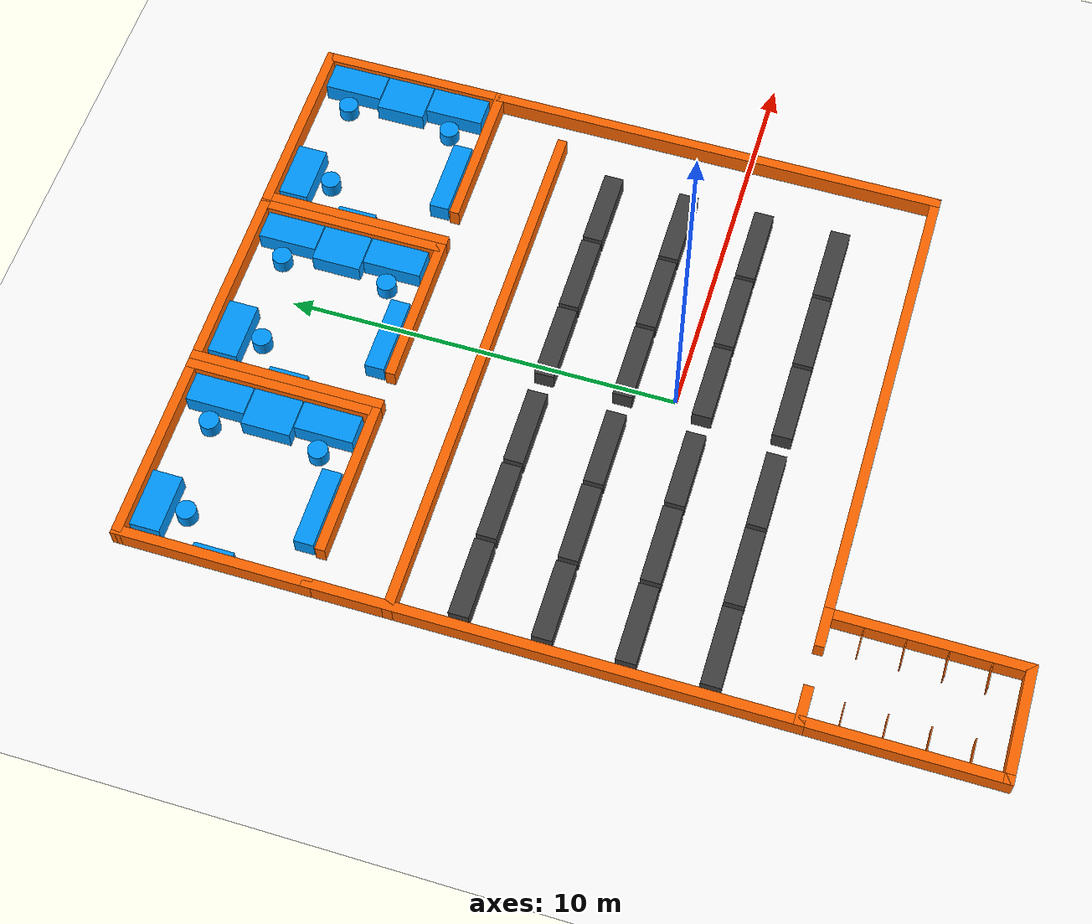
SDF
<!--
@file warehouse_world.sdf
@author Daniel Onderka (xonder05)
@date 03/2026
-->

<sdf version="1.9">
  <world name="warehouse">

    <plugin name="gz::sim::systems::Physics" filename="ignition-gazebo-physics-system"/>
    <plugin name="gz::sim::systems::SceneBroadcaster" filename="ignition-gazebo-scene-broadcaster-system"/>
    <plugin name="gz::sim::systems::UserCommands" filename="ignition-gazebo-user-commands-system"/>
    <plugin name="gz::sim::systems::Sensors" filename="ignition-gazebo-sensors-system">
      <render_engine>ogre2</render_engine>
    </plugin>

    <physics name="1ms" type="ignored">
      <max_step_size>0.004</max_step_size>
      <real_time_factor>1</real_time_factor>
      <real_time_update_rate>250</real_time_update_rate>
    </physics>
    <gravity>0 0 -9.8</gravity>
    <magnetic_field>6e-06 2.3e-05 -4.2e-05</magnetic_field>
    <atmosphere type="adiabatic"/>
    <scene>
      <ambient>0.4 0.4 0.4 1</ambient>
      <background>0.7 0.7 0.7 1</background>
      <shadows>true</shadows>
    </scene>

    <!-- Sun and Ground -->

    <light type="directional" name="sun">
      <cast_shadows>true</cast_shadows>
      <pose>0 0 10 0 0 0</pose>
      <diffuse>0.8 0.8 0.8 1</diffuse>
      <specular>0.2 0.2 0.2 1</specular>
      <attenuation>
        <range>1000</range>
        <constant>0.9</constant>
        <linear>0.01</linear>
        <quadratic>0.001</quadratic>
      </attenuation>
      <direction>-0.5 0.1 -0.9</direction>
    </light>

    <model name="ground_plane">
      <static>true</static>
      <link name="ground_plane">
        <visual name="visual">
          <geometry>
            <plane>
              <normal>0 0 1</normal>
              <size>25 25</size>
            </plane>
          </geometry>
          <material>
            <diffuse>1.0 1.0 1.0 1.0</diffuse>
          </material>
        </visual>
        <collision name="collision">
          <geometry>
            <plane>
              <normal>0 0 1</normal>
              <size>25 25</size>
            </plane>
          </geometry>
          <surface>
            <friction>
              <ode/>
            </friction>
            <bounce/>
            <contact/>
          </surface>
        </collision>
      </link>
    </model>

    <!-- Robot parking room -->

    <include>
      <name>parking</name>
      <uri>model://worlds/warehouse/robot_parking.sdf</uri>
      <pose>-6 -7.25 0.25 0 0 3.1415</pose>
    </include>

    <!-- Offices -->

    <include>
      <name>office_1</name>
      <uri>model://worlds/warehouse/office.sdf</uri>
      <pose>5 9.25 0.25 0 0 1.5707</pose>
    </include>

    <include>
      <name>office_2</name>
      <uri>model://worlds/warehouse/office.sdf</uri>
      <pose>0 9.25 0.25 0 0 1.5707</pose>
    </include>

    <include>
      <name>office_3</name>
      <uri>model://worlds/warehouse/office.sdf</uri>
      <pose>-5 9.25 0.25 0 0 1.5707</pose>
    </include>

    <!-- Shelves -->

    <include>
      <name>shelves</name>
      <uri>model://worlds/warehouse/storage.sdf</uri>
      <pose>-0.7 0.25 0.25 0 0 0</pose>
    </include>

    <!-- Remaining Walls -->

    <model name="wall1">
      <static>true</static>
      <pose>-7.375 1 0.25 0 0 1.5707</pose>
      <link name="link">
        <visual name="visual">
          <geometry><box><size>12 0.25 0.5</size></box></geometry>
          <material><diffuse>1.0 0.4 0 1</diffuse></material>
        </visual>
        <collision name="collision">
          <geometry><box><size>12 0.25 0.5</size></box></geometry>
        </collision>
      </link>
    </model>

    <model name="wall2">
      <static>true</static>
      <pose>1.5 -4.875 0.25 0 0 0</pose>
      <link name="link">
        <visual name="visual">
          <geometry><box><size>12 0.25 0.5</size></box></geometry>
          <material><diffuse>1.0 0.4 0 1</diffuse></material>
        </visual>
        <collision name="collision">
          <geometry><box><size>12 0.25 0.5</size></box></geometry>
        </collision>
      </link>
    </model>

    <model name="wall3">
      <static>true</static>
      <pose>7.375 1 0.25 0 0 1.5707</pose>
      <link name="link">
        <visual name="visual">
          <geometry><box><size>12 0.25 0.5</size></box></geometry>
          <material><diffuse>1.0 0.4 0 1</diffuse></material>
        </visual>
        <collision name="collision">
          <geometry><box><size>12 0.25 0.5</size></box></geometry>
        </collision>
      </link>
    </model>

    <model name="wall4">
      <static>true</static>
      <pose>-0.5 4.875 0.25 0 0 0</pose>
      <link name="link">
        <visual name="visual">
          <geometry><box><size>14 0.25 0.5</size></box></geometry>
          <material><diffuse>1.0 0.4 0 1</diffuse></material>
        </visual>
        <collision name="collision">
          <geometry><box><size>14 0.25 0.5</size></box></geometry>
        </collision>
      </link>
    </model>

  </world>
</sdf>

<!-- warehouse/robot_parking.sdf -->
<!--
@file robot_parking.sdf
@author Daniel Onderka (xonder05)
@date 03/2026
-->

<sdf version="1.9">
  <model name="robot_parking">

    <!-- Walls -->

    <model name="wall1">
      <static>true</static>
      <pose>0 2.375 0 0 0 0</pose>
      <link name="link">
        <visual name="visual">
          <geometry><box><size>3 0.25 0.5</size></box></geometry>
          <material><diffuse>1.0 0.4 0 1</diffuse></material>
        </visual>
        <collision name="collision">
          <geometry><box><size>3 0.25 0.5</size></box></geometry>
        </collision>
      </link>
    </model>

    <model name="wall2">
      <static>true</static>
      <pose>1.375 0 0 0 0 1.5707</pose>
      <link name="link">
        <visual name="visual">
          <geometry><box><size>5 0.25 0.5</size></box></geometry>
          <material><diffuse>1.0 0.4 0 1</diffuse></material>
        </visual>
        <collision name="collision">
        <geometry><box><size>5 0.25 0.5</size></box></geometry>
        </collision>
      </link>
    </model>

    <model name="wall3">
      <static>true</static>
      <pose>-1.375 0 0 0 0 1.5707</pose>
      <link name="link">
        <visual name="visual">
          <geometry><box><size>5 0.25 0.5</size></box></geometry>
          <material><diffuse>1.0 0.4 0 1</diffuse></material>
        </visual>
        <collision name="collision">
        <geometry><box><size>5 0.25 0.5</size></box></geometry>
        </collision>
      </link>
    </model>

    <model name="wall4">
      <static>true</static>
      <pose>1 -2.375 0 0 0 0</pose>
      <link name="link">
        <visual name="visual">
          <geometry><box><size>1 0.25 0.5</size></box></geometry>
          <material><diffuse>1.0 0.4 0 1</diffuse></material>
        </visual>
        <collision name="collision">
        <geometry><box><size>1 0.25 0.5</size></box></geometry>
        </collision>
      </link>
    </model>

    <model name="wall5">
      <static>true</static>
      <pose>-1 -2.375 0 0 0 0</pose>
      <link name="link">
        <visual name="visual">
          <geometry><box><size>1 0.25 0.5</size></box></geometry>
          <material><diffuse>1.0 0.4 0 1</diffuse></material>
        </visual>
        <collision name="collision">
        <geometry><box><size>1 0.25 0.5</size></box></geometry>
        </collision>
      </link>
    </model>

    <!-- Base station separators -->

    <model name="base_station_separator_1">
      <static>true</static>
      <pose>1 1.5 0 0 0 0</pose>
      <link name="link">
        <visual name="visual">
          <geometry><box><size>0.75 0.025 0.4</size></box></geometry>
          <material><diffuse>1.0 0.4 0 1</diffuse></material>
        </visual>
        <collision name="collision">
        <geometry><box><size>0.75 0.025 0.4</size></box></geometry>
        </collision>
      </link>
    </model>

    <model name="base_station_separator_2">
      <static>true</static>
      <pose>1 0.5 0 0 0 0</pose>
      <link name="link">
        <visual name="visual">
          <geometry><box><size>0.75 0.025 0.4</size></box></geometry>
          <material><diffuse>1.0 0.4 0 1</diffuse></material>
        </visual>
        <collision name="collision">
        <geometry><box><size>0.75 0.025 0.4</size></box></geometry>
        </collision>
      </link>
    </model>

    <model name="base_station_separator_3">
      <static>true</static>
      <pose>1 -0.5 0 0 0 0</pose>
      <link name="link">
        <visual name="visual">
          <geometry><box><size>0.75 0.025 0.4</size></box></geometry>
          <material><diffuse>1.0 0.4 0 1</diffuse></material>
        </visual>
        <collision name="collision">
          <geometry><box><size>0.75 0.025 0.4</size></box></geometry>
        </collision>
      </link>
    </model>

    <model name="base_station_separator_4">
      <static>true</static>
      <pose>1 -1.5 0 0 0 0</pose>
      <link name="link">
        <visual name="visual">
          <geometry><box><size>0.75 0.025 0.4</size></box></geometry>
          <material><diffuse>1.0 0.4 0 1</diffuse></material>
        </visual>
        <collision name="collision">
          <geometry><box><size>0.75 0.025 0.4</size></box></geometry>
        </collision>
      </link>
    </model>

    <model name="base_station_separator_5">
      <static>true</static>
      <pose>-1 1.5 0 0 0 0</pose>
      <link name="link">
        <visual name="visual">
          <geometry><box><size>0.75 0.025 0.4</size></box></geometry>
          <material><diffuse>1.0 0.4 0 1</diffuse></material>
        </visual>
        <collision name="collision">
          <geometry><box><size>0.75 0.025 0.4</size></box></geometry>
        </collision>
      </link>
    </model>

    <model name="base_station_separator_6">
      <static>true</static>
      <pose>-1 0.5 0 0 0 0</pose>
      <link name="link">
        <visual name="visual">
          <geometry><box><size>0.75 0.025 0.4</size></box></geometry>
          <material><diffuse>1.0 0.4 0 1</diffuse></material>
        </visual>
        <collision name="collision">
          <geometry><box><size>0.75 0.025 0.4</size></box></geometry>
        </collision>
      </link>
    </model>

    <model name="base_station_separator_7">
      <static>true</static>
      <pose>-1 -0.5 0 0 0 0</pose>
      <link name="link">
        <visual name="visual">
          <geometry><box><size>0.75 0.025 0.4</size></box></geometry>
          <material><diffuse>1.0 0.4 0 1</diffuse></material>
        </visual>
        <collision name="collision">
          <geometry><box><size>0.75 0.025 0.4</size></box></geometry>
        </collision>
      </link>
    </model>

    <model name="base_station_separator_8">
      <static>true</static>
      <pose>-1 -1.5 0 0 0 0</pose>
      <link name="link">
        <visual name="visual">
          <geometry><box><size>0.75 0.025 0.4</size></box></geometry>
          <material><diffuse>1.0 0.4 0 1</diffuse></material>
        </visual>
        <collision name="collision">
          <geometry><box><size>0.75 0.025 0.4</size></box></geometry>
        </collision>
      </link>
    </model>

  </model>
</sdf>

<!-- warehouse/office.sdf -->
<!--
@file office.sdf
@author Daniel Onderka (xonder05)
@date 03/2026
-->

<sdf version="1.9">
  <model name="office">

    <!-- Walls -->

    <model name="wall1">
      <static>true</static>
      <pose>0 2.375 0 0 0 0</pose>
      <link name="link">
        <visual name="visual">
          <geometry><box><size>5 0.25 0.5</size></box></geometry>
          <material><diffuse>1.0 0.4 0 1</diffuse></material>
        </visual>
        <collision name="collision">
          <geometry><box><size>5 0.25 0.5</size></box></geometry>
        </collision>
      </link>
    </model>

    <model name="wall2">
      <static>true</static>
      <pose>0 -2.375 0 0 0 0</pose>
      <link name="link">
        <visual name="visual">
          <geometry><box><size>5 0.25 0.5</size></box></geometry>
          <material><diffuse>1.0 0.4 0 1</diffuse></material>
        </visual>
        <collision name="collision">
          <geometry><box><size>5 0.25 0.5</size></box></geometry>
        </collision>
      </link>
    </model>

    <model name="wall3">
      <static>true</static>
      <pose>2.375 0 0 0 0 1.5707</pose>
      <link name="link">
        <visual name="visual">
          <geometry><box><size>5 0.25 0.5</size></box></geometry>
          <material><diffuse>1.0 0.4 0 1</diffuse></material>
        </visual>
        <collision name="collision">
          <geometry><box><size>5 0.25 0.5</size></box></geometry>
        </collision>
      </link>
    </model>

    <model name="wall4">
      <static>true</static>
      <pose>-2.375 -0.5 0 0 0 1.5707</pose>
      <link name="link">
        <visual name="visual">
          <geometry><box><size>4 0.25 0.5</size></box></geometry>
          <material><diffuse>1.0 0.4 0 1</diffuse></material>
        </visual>
        <collision name="collision">
          <geometry><box><size>4 0.25 0.5</size></box></geometry>
        </collision>
      </link>
    </model>

    <!-- Furniture -->

    <model name="table1">
      <static>true</static>
      <pose>1.4 -1.775 0 0 0 0</pose>
      <link name="link">
        <visual name="visual">
          <geometry><box><size>1.5 0.75 0.5</size></box></geometry>
          <material><diffuse>0 0.6 1.0 1</diffuse></material>
        </visual>
        <collision name="collision">
          <geometry><box><size>1.5 0.75 0.5</size></box></geometry>
        </collision>
      </link>
    </model>

    <model name="chair1">
      <static>true</static>
      <pose>1.4 -1.025 0 0 0 0</pose>
      <link name="link">
        <visual name="visual">
          <geometry><cylinder>
            <radius>0.25</radius>
            <length>0.4</length>
          </cylinder></geometry>
          <material><diffuse>0 0.6 1.0 1</diffuse></material>
        </visual>
        <collision name="collision">
          <geometry><box><size>0.5 0.5 0.5</size></box></geometry>
        </collision>
      </link>
    </model>

    <model name="table1.5">
      <static>true</static>
      <pose>0 -1.65 0 0 0 0</pose>
      <link name="link">
        <visual name="visual">
          <geometry><box><size>1.25 1 0.5</size></box></geometry>
          <material><diffuse>0 0.6 1.0 1</diffuse></material>
        </visual>
        <collision name="collision">
          <geometry><box><size>1.25 1 0.5</size></box></geometry>
        </collision>
      </link>
    </model>

    <model name="table2">
      <static>true</static>
      <pose>-1.4 -1.775 0 0 0 0</pose>
      <link name="link">
        <visual name="visual">
          <geometry><box><size>1.5 0.75 0.5</size></box></geometry>
          <material><diffuse>0 0.6 1.0 1</diffuse></material>
        </visual>
        <collision name="collision">
          <geometry><box><size>1.5 0.75 0.5</size></box></geometry>
        </collision>
      </link>
    </model>

    <model name="chair2">
      <static>true</static>
      <pose>-1.4 -1.025 0 0 0 0</pose>
      <link name="link">
        <visual name="visual">
          <geometry><cylinder>
            <radius>0.25</radius>
            <length>0.4</length>
          </cylinder></geometry>
          <material><diffuse>0 0.6 1.0 1</diffuse></material>
        </visual>
        <collision name="collision">
          <geometry><box><size>0.5 0.5 0.5</size></box></geometry>
        </collision>
      </link>
    </model>

    <model name="table3">
      <static>true</static>
      <pose>1.775 1.4 0 0 0 1.5707</pose>
      <link name="link">
        <visual name="visual">
          <geometry><box><size>1.5 0.75 0.5</size></box></geometry>
          <material><diffuse>0 0.6 1.0 1</diffuse></material>
        </visual>
        <collision name="collision">
          <geometry><box><size>1.5 0.75 0.5</size></box></geometry>
        </collision>
      </link>
    </model>

    <model name="chair3">
      <static>true</static>
      <pose>1.025 1.4 0 0 0 0</pose>
      <link name="link">
        <visual name="visual">
          <geometry><cylinder>
            <radius>0.25</radius>
            <length>0.4</length>
          </cylinder></geometry>
          <material><diffuse>0 0.6 1.0 1</diffuse></material>
        </visual>
        <collision name="collision">
          <geometry><box><size>0.5 0.5 0.5</size></box></geometry>
        </collision>
      </link>
    </model>

    <model name="coat_hanger">
      <static>true</static>
      <pose>0 2.2 0 0 0 0</pose>
      <link name="link">
        <visual name="visual">
          <geometry><box><size>1 0.1 0.5</size></box></geometry>
          <material><diffuse>0 0.6 1.0 1</diffuse></material>
        </visual>
        <collision name="collision">
          <geometry><box><size>1 0.1 0.5</size></box></geometry>
        </collision>
      </link>
    </model>

    <model name="storage_thing">
      <static>true</static>
      <pose>-1.95 0.45 0 0 0 1.5707</pose>
      <link name="link">
        <visual name="visual">
          <geometry><box><size>2 0.5 0.5</size></box></geometry>
          <material><diffuse>0 0.6 1.0 1</diffuse></material>
        </visual>
        <collision name="collision">
          <geometry><box><size>2 0.5 0.5</size></box></geometry>
        </collision>
      </link>
    </model>

  </model>
</sdf>

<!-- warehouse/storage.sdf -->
<!--
@file storage.sdf
@author Daniel Onderka (xonder05)
@date 03/2026
-->

<sdf version="1.9">
  <model name="shelves_grid">

    <model name="shelf11">
      <static>true</static>
      <pose>5.45 3 0 0 0 0</pose>
      <link name="link">
        <visual name="visual">
        <geometry><box><size>2 0.5 0.5</size></box></geometry>
        <material><diffuse>0.25 0.25 0.25 1</diffuse></material>
        </visual>
        <collision name="collision">
        <geometry><box><size>2 0.5 0.5</size></box></geometry>
        </collision>
      </link>
    </model>

    <model name="shelf12">
      <static>true</static>
      <pose>3.35 3 0 0 0 0</pose>
      <link name="link">
        <visual name="visual">
          <geometry><box><size>2 0.5 0.5</size></box></geometry>
          <material><diffuse>0.25 0.25 0.25 1</diffuse></material>
        </visual>
        <collision name="collision">
          <geometry><box><size>2 0.5 0.5</size></box></geometry>
        </collision>
      </link>
    </model>

    <model name="shelf13">
      <static>true</static>
      <pose>1.25 3 0 0 0 0</pose>
      <link name="link">
        <visual name="visual">
          <geometry><box><size>2 0.5 0.5</size></box></geometry>
          <material><diffuse>0.25 0.25 0.25 1</diffuse></material>
        </visual>
        <collision name="collision">
          <geometry><box><size>2 0.5 0.5</size></box></geometry>
        </collision>
      </link>
    </model>

    <model name="shelf14">
      <static>true</static>
      <pose>-1.25 3 0 0 0 0</pose>
      <link name="link">
        <visual name="visual">
          <geometry><box><size>2 0.5 0.5</size></box></geometry>
          <material><diffuse>0.25 0.25 0.25 1</diffuse></material>
        </visual>
        <collision name="collision">
          <geometry><box><size>2 0.5 0.5</size></box></geometry>
        </collision>
      </link>
    </model>

    <model name="shelf15">
      <static>true</static>
      <pose>-3.35 3 0 0 0 0</pose>
      <link name="link">
        <visual name="visual">
          <geometry><box><size>2 0.5 0.5</size></box></geometry>
          <material><diffuse>0.25 0.25 0.25 1</diffuse></material>
        </visual>
        <collision name="collision">
          <geometry><box><size>2 0.5 0.5</size></box></geometry>
        </collision>
      </link>
    </model>

    <model name="shelf16">
      <static>true</static>
      <pose>-5.45 3 0 0 0 0</pose>
      <link name="link">
        <visual name="visual">
          <geometry><box><size>2 0.5 0.5</size></box></geometry>
          <material><diffuse>0.25 0.25 0.25 1</diffuse></material>
        </visual>
        <collision name="collision">
          <geometry><box><size>2 0.5 0.5</size></box></geometry>
        </collision>
      </link>
    </model>

    <model name="shelf21">
      <static>true</static>
      <pose>5.45 1 0 0 0 0</pose>
      <link name="link">
        <visual name="visual">
          <geometry><box><size>2 0.5 0.5</size></box></geometry>
          <material><diffuse>0.25 0.25 0.25 1</diffuse></material>
        </visual>
        <collision name="collision">
          <geometry><box><size>2 0.5 0.5</size></box></geometry>
        </collision>
      </link>
    </model>

    <model name="shelf22">
      <static>true</static>
      <pose>3.35 1 0 0 0 0</pose>
      <link name="link">
        <visual name="visual">
          <geometry><box><size>2 0.5 0.5</size></box></geometry>
          <material><diffuse>0.25 0.25 0.25 1</diffuse></material>
        </visual>
        <collision name="collision">
          <geometry><box><size>2 0.5 0.5</size></box></geometry>
        </collision>
      </link>
    </model>

    <model name="shelf23">
      <static>true</static>
      <pose>1.25 1 0 0 0 0</pose>
      <link name="link">
        <visual name="visual">
          <geometry><box><size>2 0.5 0.5</size></box></geometry>
          <material><diffuse>0.25 0.25 0.25 1</diffuse></material>
        </visual>
        <collision name="collision">
          <geometry><box><size>2 0.5 0.5</size></box></geometry>
        </collision>
      </link>
    </model>

    <model name="shelf24">
      <static>true</static>
      <pose>-1.25 1 0 0 0 0</pose>
      <link name="link">
        <visual name="visual">
          <geometry><box><size>2 0.5 0.5</size></box></geometry>
          <material><diffuse>0.25 0.25 0.25 1</diffuse></material>
        </visual>
        <collision name="collision">
          <geometry><box><size>2 0.5 0.5</size></box></geometry>
        </collision>
      </link>
    </model>

    <model name="shelf25">
      <static>true</static>
      <pose>-3.35 1 0 0 0 0</pose>
      <link name="link">
        <visual name="visual">
          <geometry><box><size>2 0.5 0.5</size></box></geometry>
          <material><diffuse>0.25 0.25 0.25 1</diffuse></material>
        </visual>
        <collision name="collision">
          <geometry><box><size>2 0.5 0.5</size></box></geometry>
        </collision>
      </link>
    </model>

    <model name="shelf26">
      <static>true</static>
      <pose>-5.45 1 0 0 0 0</pose>
      <link name="link">
        <visual name="visual">
          <geometry><box><size>2 0.5 0.5</size></box></geometry>
          <material><diffuse>0.25 0.25 0.25 1</diffuse></material>
        </visual>
        <collision name="collision">
          <geometry><box><size>2 0.5 0.5</size></box></geometry>
        </collision>
      </link>
    </model>

    <model name="shelf31">
      <static>true</static>
      <pose>5.45 -1 0 0 0 0</pose>
      <link name="link">
        <visual name="visual">
          <geometry><box><size>2 0.5 0.5</size></box></geometry>
          <material><diffuse>0.25 0.25 0.25 1</diffuse></material>
        </visual>
        <collision name="collision">
          <geometry><box><size>2 0.5 0.5</size></box></geometry>
        </collision>
      </link>
    </model>

    <model name="shelf32">
      <static>true</static>
      <pose>3.35 -1 0 0 0 0</pose>
      <link name="link">
        <visual name="visual">
          <geometry><box><size>2 0.5 0.5</size></box></geometry>
          <material><diffuse>0.25 0.25 0.25 1</diffuse></material>
        </visual>
        <collision name="collision">
          <geometry><box><size>2 0.5 0.5</size></box></geometry>
        </collision>
      </link>
    </model>

    <model name="shelf33">
      <static>true</static>
      <pose>1.25 -1 0 0 0 0</pose>
      <link name="link">
        <visual name="visual">
          <geometry><box><size>2 0.5 0.5</size></box></geometry>
          <material><diffuse>0.25 0.25 0.25 1</diffuse></material>
        </visual>
        <collision name="collision">
          <geometry><box><size>2 0.5 0.5</size></box></geometry>
        </collision>
      </link>
    </model>

    <model name="shelf34">
      <static>true</static>
      <pose>-1.25 -1 0 0 0 0</pose>
      <link name="link">
        <visual name="visual">
          <geometry><box><size>2 0.5 0.5</size></box></geometry>
          <material><diffuse>0.25 0.25 0.25 1</diffuse></material>
        </visual>
        <collision name="collision">
          <geometry><box><size>2 0.5 0.5</size></box></geometry>
        </collision>
      </link>
    </model>

    <model name="shelf35">
      <static>true</static>
      <pose>-3.35 -1 0 0 0 0</pose>
      <link name="link">
        <visual name="visual">
          <geometry><box><size>2 0.5 0.5</size></box></geometry>
          <material><diffuse>0.25 0.25 0.25 1</diffuse></material>
        </visual>
        <collision name="collision">
          <geometry><box><size>2 0.5 0.5</size></box></geometry>
        </collision>
      </link>
    </model>

    <model name="shelf36">
      <static>true</static>
      <pose>-5.45 -1 0 0 0 0</pose>
      <link name="link">
        <visual name="visual">
          <geometry><box><size>2 0.5 0.5</size></box></geometry>
          <material><diffuse>0.25 0.25 0.25 1</diffuse></material>
        </visual>
        <collision name="collision">
          <geometry><box><size>2 0.5 0.5</size></box></geometry>
        </collision>
      </link>
    </model>

    <model name="shelf41">
      <static>true</static>
      <pose>5.45 -3 0 0 0 0</pose>
      <link name="link">
        <visual name="visual">
          <geometry><box><size>2 0.5 0.5</size></box></geometry>
          <material><diffuse>0.25 0.25 0.25 1</diffuse></material>
        </visual>
        <collision name="collision">
          <geometry><box><size>2 0.5 0.5</size></box></geometry>
        </collision>
      </link>
    </model>

    <model name="shelf42">
      <static>true</static>
      <pose>3.35 -3 0 0 0 0</pose>
      <link name="link">
        <visual name="visual">
          <geometry><box><size>2 0.5 0.5</size></box></geometry>
          <material><diffuse>0.25 0.25 0.25 1</diffuse></material>
        </visual>
        <collision name="collision">
          <geometry><box><size>2 0.5 0.5</size></box></geometry>
        </collision>
      </link>
    </model>

    <model name="shelf43">
      <static>true</static>
      <pose>1.25 -3 0 0 0 0</pose>
      <link name="link">
        <visual name="visual">
          <geometry><box><size>2 0.5 0.5</size></box></geometry>
          <material><diffuse>0.25 0.25 0.25 1</diffuse></material>
        </visual>
        <collision name="collision">
          <geometry><box><size>2 0.5 0.5</size></box></geometry>
        </collision>
      </link>
    </model>

    <model name="shelf44">
      <static>true</static>
      <pose>-1.25 -3 0 0 0 0</pose>
      <link name="link">
        <visual name="visual">
          <geometry><box><size>2 0.5 0.5</size></box></geometry>
          <material><diffuse>0.25 0.25 0.25 1</diffuse></material>
        </visual>
        <collision name="collision">
          <geometry><box><size>2 0.5 0.5</size></box></geometry>
        </collision>
      </link>
    </model>

    <model name="shelf45">
      <static>true</static>
      <pose>-3.35 -3 0 0 0 0</pose>
      <link name="link">
        <visual name="visual">
          <geometry><box><size>2 0.5 0.5</size></box></geometry>
          <material><diffuse>0.25 0.25 0.25 1</diffuse></material>
        </visual>
        <collision name="collision">
          <geometry><box><size>2 0.5 0.5</size></box></geometry>
        </collision>
      </link>
    </model>

    <model name="shelf46">
      <static>true</static>
      <pose>-5.45 -3 0 0 0 0</pose>
      <link name="link">
        <visual name="visual">
          <geometry><box><size>2 0.5 0.5</size></box></geometry>
          <material><diffuse>0.25 0.25 0.25 1</diffuse></material>
        </visual>
        <collision name="collision">
          <geometry><box><size>2 0.5 0.5</size></box></geometry>
        </collision>
      </link>
    </model>

  </model>
</sdf>
